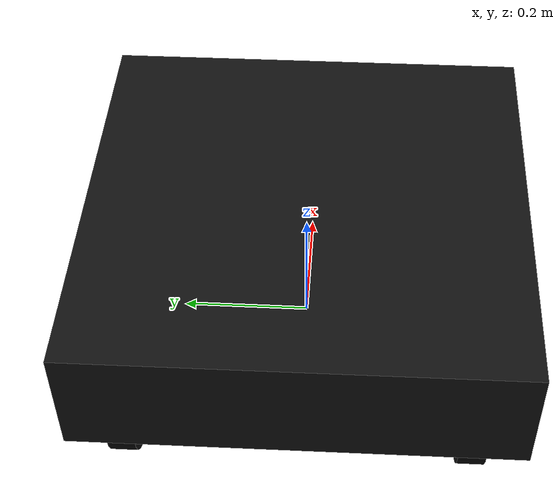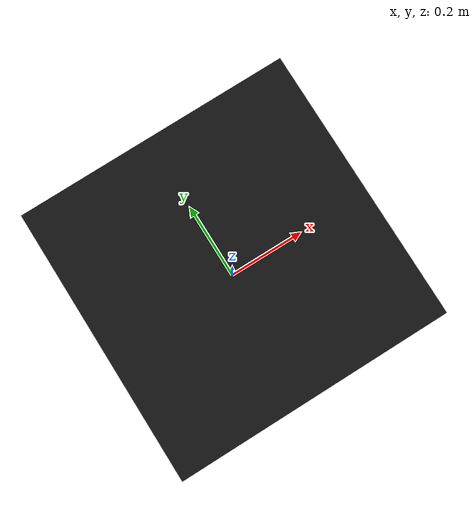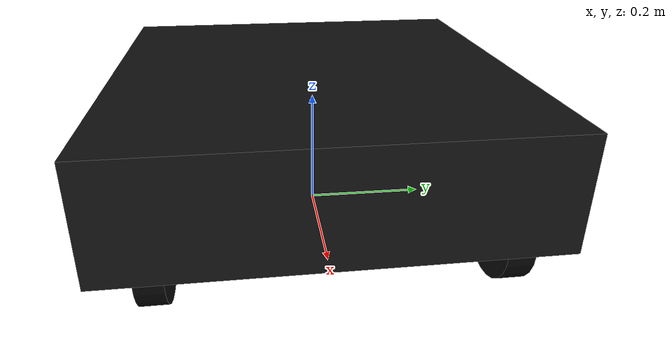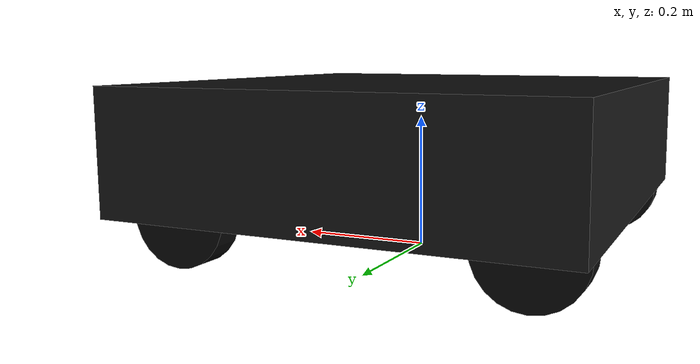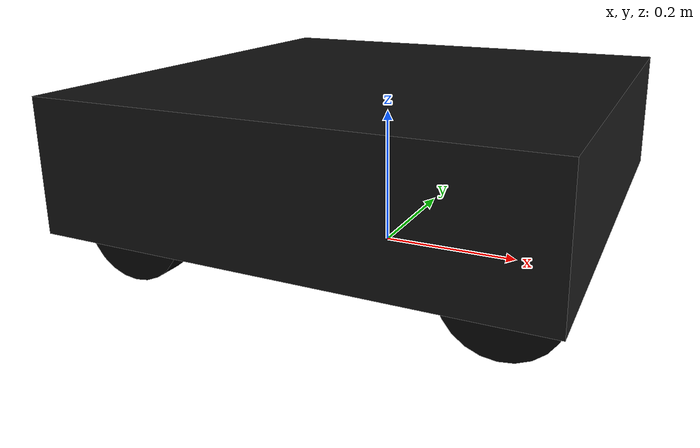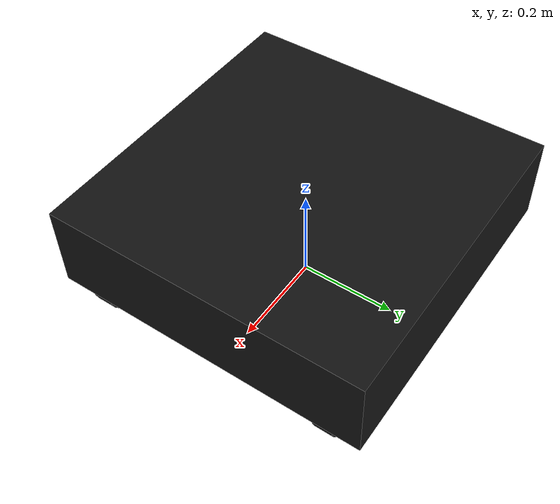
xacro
<?xml version="1.0"?>

<robot xmlns:xacro="http://www.ros.org/wiki/xacro" name="tr">

<xacro:property name="chassis_x" value="0.66"/>
<xacro:property name="chassis_y" value="0.66"/>
<xacro:property name="chassis_z" value="0.18"/>

<xacro:property name="wheel_radius" value="0.075"/>
<xacro:property name="wheel_width" value="0.04"/>

<xacro:property name="wheel_x" value="0.25"/>
<xacro:property name="wheel_y" value="0.25"/>

<link name="base_link">

<visual>
<origin xyz="0 0 0.165" rpy="0 0 0"/>
<geometry>
<box size="${chassis_x} ${chassis_y} ${chassis_z}"/>
</geometry>
<material name="black">
<color rgba="0.08 0.08 0.08 1"/>
</material>
</visual>

<collision>
<origin xyz="0 0 0.165" rpy="0 0 0"/>
<geometry>
<box size="${chassis_x} ${chassis_y} ${chassis_z}"/>
</geometry>
</collision>

<inertial>
<mass value="35.0"/>
<origin xyz="0 0 0"/>
<inertia
ixx="1.0"
iyy="1.0"
izz="1.0"
ixy="0"
ixz="0"
iyz="0"/>
</inertial>

</link>

<xacro:macro name="wheel" params="name x y">

<link name="${name}">

<visual>
<origin xyz="0 0 0" rpy="1.5708 0 0"/>
<geometry>
<cylinder radius="${wheel_radius}" length="${wheel_width}"/>
</geometry>
<material name="wheel_black">
<color rgba="0.03 0.03 0.03 1"/>
</material>
</visual>

<collision>
<origin xyz="0 0 0" rpy="1.5708 0 0"/>
<geometry>
<cylinder radius="${wheel_radius}" length="${wheel_width}"/>
</geometry>
</collision>

<inertial>
<mass value="1.0"/>
<origin xyz="0 0 0"/>
<inertia
ixx="0.01"
iyy="0.01"
izz="0.01"
ixy="0"
ixz="0"
iyz="0"/>
</inertial>

</link>

<joint name="${name}_joint" type="continuous">

<parent link="base_link"/>
<child link="${name}"/>

<origin xyz="${x} ${y} 0.075" rpy="0 0 0"/>

<axis xyz="0 1 0"/>

<limit effort="100" velocity="30"/>

</joint>

</xacro:macro>

<xacro:wheel
name="front_left_wheel"
x="${wheel_x}"
y="${wheel_y}"/>

<xacro:wheel
name="front_right_wheel"
x="${wheel_x}"
y="-${wheel_y}"/>

<xacro:wheel
name="rear_left_wheel"
x="-${wheel_x}"
y="${wheel_y}"/>

<xacro:wheel
name="rear_right_wheel"
x="-${wheel_x}"
y="-${wheel_y}"/>

<gazebo>
<plugin filename="libgazebo_ros_diff_drive.so" name="gazebo_ros_diff_drive">

<ros>
<remapping>cmd_vel:=/cmd_vel</remapping>
</ros>

<num_wheel_pairs>2</num_wheel_pairs>

<left_joint>front_left_wheel_joint</left_joint>
<left_joint>rear_left_wheel_joint</left_joint>

<right_joint>front_right_wheel_joint</right_joint>
<right_joint>rear_right_wheel_joint</right_joint>

<wheel_separation>0.50</wheel_separation>
<wheel_diameter>0.15</wheel_diameter>

<robot_base_frame>tr/base_link</robot_base_frame>
<odometry_frame>tr/odom</odometry_frame>
<publish_odom>true</publish_odom>
<publish_odom_tf>true</publish_odom_tf>

<odom_publish_frequency>50</odom_publish_frequency>

</plugin>

</gazebo>
<link name="lidar_link">

<visual>
<geometry>
<cylinder radius="0.04" length="0.05"/>
</geometry>
<material name="lidar_black">
<color rgba="0.02 0.02 0.02 1"/>
</material>
</visual>

<collision>
<geometry>
<cylinder radius="0.04" length="0.05"/>
</geometry>
</collision>

</link>

<joint name="lidar_joint" type="fixed">

<parent link="base_link"/>
<child link="lidar_link"/>

<origin xyz="0 0 0.20" rpy="0 0 0"/>

</joint>

<gazebo reference="lidar_link">
<sensor name="lidar" type="ray">
<update_rate>10</update_rate>

<lidar>

<scan>

<horizontal>
<samples>720</samples>
<resolution>1</resolution>
<min_angle>-3.14159265</min_angle>
<max_angle>3.14159265</max_angle>
</horizontal>

<vertical>
<samples>1</samples>
<resolution>1</resolution>
<min_angle>0</min_angle>
<max_angle>0</max_angle>
</vertical>

</scan>

<range>
<min>0.12</min>
<max>12.0</max>
<resolution>0.01</resolution>
</range>

</lidar>

<visualize>true</visualize>

<plugin name="gazebo_ros_ray_sensor" filename="libgazebo_ros_ray_sensor.so">
<ros>
<remapping>~/out:=/scan</remapping>
</ros>
<output_type>sensor_msgs/LaserScan</output_type>
<frame_name>tr/lidar_link</frame_name>
</plugin>

</sensor>

</gazebo>

</robot>
